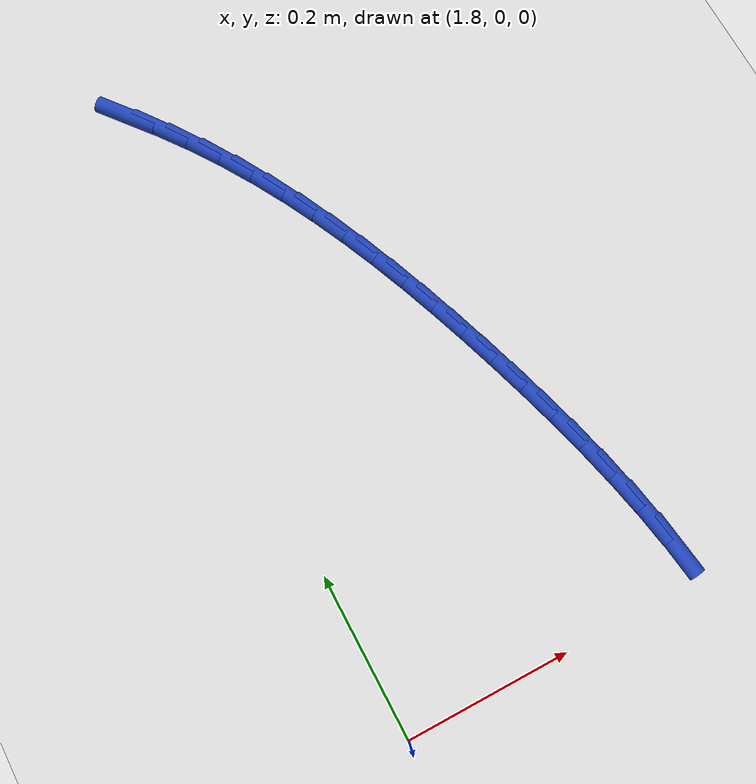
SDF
<sdf version="1.6">
 <world name="default">
  <model name="ground_plane">
   <static>1</static>
   <link name="link">
    <collision name="collision">
     <geometry><plane><normal>0 0 1</normal><size>100 100</size></plane></geometry>
     <surface><friction><ode><mu>100</mu><mu2>50</mu2></ode></friction></surface>
    </collision>
    <visual name="visual">
     <cast_shadows>0</cast_shadows>
     <geometry><plane><normal>0 0 1</normal><size>100 100</size></plane></geometry>
     <material>
      <script><uri>file://media/materials/scripts/gazebo.material</uri><name>Gazebo/WhiteGlow</name></script>
     </material>
    </visual>
   </link>
  </model>
  <model name="line">
   <link name="link_55">
    <pose>1.8437221421092214 0.8193641237856172 0.01 0 1.57 -0.8930328994932771</pose>
    <collision name="collision">
     <geometry><cylinder><radius>0.01</radius><length>0.08</length></cylinder></geometry>
    </collision>
    <visual name="visual">
     <material>
      <script><name>Gazebo/Blue</name><uri>file://media/materials/scripts/gazebo.material</uri></script>
     </material>
     <geometry><cylinder><radius>0.01</radius><length>0.08</length></cylinder></geometry>
    </visual>
   </link>
   <link name="link_56">
    <pose>1.873075689637875 0.78289868104458 0.01 0 1.57 -0.9362868223097333</pose>
    <collision name="collision">
     <geometry><cylinder><radius>0.01</radius><length>0.08</length></cylinder></geometry>
    </collision>
    <visual name="visual">
     <material>
      <script><name>Gazebo/Blue</name><uri>file://media/materials/scripts/gazebo.material</uri></script>
     </material>
     <geometry><cylinder><radius>0.01</radius><length>0.08</length></cylinder></geometry>
    </visual>
   </link>
   <link name="link_57">
    <pose>1.900731906571012 0.7453245637387648 0.01 0 1.57 -0.980155334895303</pose>
    <collision name="collision">
     <geometry><cylinder><radius>0.01</radius><length>0.08</length></cylinder></geometry>
    </collision>
    <visual name="visual">
     <material>
      <script><name>Gazebo/Blue</name><uri>file://media/materials/scripts/gazebo.material</uri></script>
     </material>
     <geometry><cylinder><radius>0.01</radius><length>0.08</length></cylinder></geometry>
    </visual>
   </link>
   <link name="link_58">
    <pose>1.9266118898378368 0.7067256292664923 0.01 0 1.57 -1.0233508540933316</pose>
    <collision name="collision">
     <geometry><cylinder><radius>0.01</radius><length>0.08</length></cylinder></geometry>
    </collision>
    <visual name="visual">
     <material>
      <script><name>Gazebo/Blue</name><uri>file://media/materials/scripts/gazebo.material</uri></script>
     </material>
     <geometry><cylinder><radius>0.01</radius><length>0.08</length></cylinder></geometry>
    </visual>
   </link>
   <link name="link_59">
    <pose>1.9507228171243516 0.6671733193071 0.01 0 1.57 -1.063724761281476</pose>
    <collision name="collision">
     <geometry><cylinder><radius>0.01</radius><length>0.08</length></cylinder></geometry>
    </collision>
    <visual name="visual">
     <material>
      <script><name>Gazebo/Blue</name><uri>file://media/materials/scripts/gazebo.material</uri></script>
     </material>
     <geometry><cylinder><radius>0.01</radius><length>0.08</length></cylinder></geometry>
    </visual>
   </link>
   <link name="link_60">
    <pose>1.9731947026909686 0.6267213584049264 0.01 0 1.57 -1.1009181930275793</pose>
    <collision name="collision">
     <geometry><cylinder><radius>0.01</radius><length>0.08</length></cylinder></geometry>
    </collision>
    <visual name="visual">
     <material>
      <script><name>Gazebo/Blue</name><uri>file://media/materials/scripts/gazebo.material</uri></script>
     </material>
     <geometry><cylinder><radius>0.01</radius><length>0.08</length></cylinder></geometry>
    </visual>
   </link>
   <link name="link_61">
    <pose>1.9941669799121624 0.5854221125535995 0.01 0 1.57 -1.1347905037578787</pose>
    <collision name="collision">
     <geometry><cylinder><radius>0.01</radius><length>0.08</length></cylinder></geometry>
    </collision>
    <visual name="visual">
     <material>
      <script><name>Gazebo/Blue</name><uri>file://media/materials/scripts/gazebo.material</uri></script>
     </material>
     <geometry><cylinder><radius>0.01</radius><length>0.08</length></cylinder></geometry>
    </visual>
   </link>
   <link name="link_62">
    <pose>2.0137790821624075 0.5433279477467475 0.01 0 1.57 -1.165258480955744</pose>
    <collision name="collision">
     <geometry><cylinder><radius>0.01</radius><length>0.08</length></cylinder></geometry>
    </collision>
    <visual name="visual">
     <material>
      <script><name>Gazebo/Blue</name><uri>file://media/materials/scripts/gazebo.material</uri></script>
     </material>
     <geometry><cylinder><radius>0.01</radius><length>0.08</length></cylinder></geometry>
    </visual>
   </link>
   <link name="link_63">
    <pose>2.032170442816179 0.5004912299779996 0.01 0 1.57 -1.1922861336543689</pose>
    <collision name="collision">
     <geometry><cylinder><radius>0.01</radius><length>0.08</length></cylinder></geometry>
    </collision>
    <visual name="visual">
     <material>
      <script><name>Gazebo/Blue</name><uri>file://media/materials/scripts/gazebo.material</uri></script>
     </material>
     <geometry><cylinder><radius>0.01</radius><length>0.08</length></cylinder></geometry>
    </visual>
   </link>
   <link name="link_64">
    <pose>2.049480495247952 0.4569643252409837 0.01 0 1.57 -1.2158742222389296</pose>
    <collision name="collision">
     <geometry><cylinder><radius>0.01</radius><length>0.08</length></cylinder></geometry>
    </collision>
    <visual name="visual">
     <material>
      <script><name>Gazebo/Blue</name><uri>file://media/materials/scripts/gazebo.material</uri></script>
     </material>
     <geometry><cylinder><radius>0.01</radius><length>0.08</length></cylinder></geometry>
    </visual>
   </link>
   <link name="link_65">
    <pose>2.065848672832199 0.412799599529328 0.01 0 1.57 -1.236050401943354</pose>
    <collision name="collision">
     <geometry><cylinder><radius>0.01</radius><length>0.08</length></cylinder></geometry>
    </collision>
    <visual name="visual">
     <material>
      <script><name>Gazebo/Blue</name><uri>file://media/materials/scripts/gazebo.material</uri></script>
     </material>
     <geometry><cylinder><radius>0.01</radius><length>0.08</length></cylinder></geometry>
    </visual>
   </link>
   <link name="link_66">
    <pose>2.0814144089433975 0.3680494188366612 0.01 0 1.57 -1.252883592524103</pose>
    <collision name="collision">
     <geometry><cylinder><radius>0.01</radius><length>0.08</length></cylinder></geometry>
    </collision>
    <visual name="visual">
     <material>
      <script><name>Gazebo/Blue</name><uri>file://media/materials/scripts/gazebo.material</uri></script>
     </material>
     <geometry><cylinder><radius>0.01</radius><length>0.08</length></cylinder></geometry>
    </visual>
   </link>
   <link name="link_67">
    <pose>2.0963159416422736 0.3227662626731727 0.01 0 1.57 -1.2686904485807189</pose>
    <collision name="collision">
     <geometry><cylinder><radius>0.01</radius><length>0.08</length></cylinder></geometry>
    </collision>
    <visual name="visual">
     <material>
      <script><name>Gazebo/Blue</name><uri>file://media/materials/scripts/gazebo.material</uri></script>
     </material>
     <geometry><cylinder><radius>0.01</radius><length>0.08</length></cylinder></geometry>
    </visual>
   </link>
   <link name="link_68">
    <pose>2.1105744985434587 0.2770137227976692 0.01 0 1.57 -1.2876784618126416</pose>
    <collision name="collision">
     <geometry><cylinder><radius>0.01</radius><length>0.08</length></cylinder></geometry>
    </collision>
    <visual name="visual">
     <material>
      <script><name>Gazebo/Blue</name><uri>file://media/materials/scripts/gazebo.material</uri></script>
     </material>
     <geometry><cylinder><radius>0.01</radius><length>0.08</length></cylinder></geometry>
    </visual>
   </link>
   <link name="link_69">
    <pose>2.123997577090241 0.23087568849691065 0.01 0 1.57 -1.3104150665724807</pose>
    <collision name="collision">
     <geometry><cylinder><radius>0.01</radius><length>0.08</length></cylinder></geometry>
    </collision>
    <visual name="visual">
     <material>
      <script><name>Gazebo/Blue</name><uri>file://media/materials/scripts/gazebo.material</uri></script>
     </material>
     <geometry><cylinder><radius>0.01</radius><length>0.08</length></cylinder></geometry>
    </visual>
   </link>
   <link name="link_70">
    <pose>2.136369905959389 0.18443821136198688 0.01 0 1.57 -1.3370742787127068</pose>
    <collision name="collision">
     <geometry><cylinder><radius>0.01</radius><length>0.08</length></cylinder></geometry>
    </collision>
    <visual name="visual">
     <material>
      <script><name>Gazebo/Blue</name><uri>file://media/materials/scripts/gazebo.material</uri></script>
     </material>
     <geometry><cylinder><radius>0.01</radius><length>0.08</length></cylinder></geometry>
    </visual>
   </link>
   <link name="link_71">
    <pose>2.1474762138276717 0.1377873429839879 0.01 0 1.57 -1.3678698956714423</pose>
    <collision name="collision">
     <geometry><cylinder><radius>0.01</radius><length>0.08</length></cylinder></geometry>
    </collision>
    <visual name="visual">
     <material>
      <script><name>Gazebo/Blue</name><uri>file://media/materials/scripts/gazebo.material</uri></script>
     </material>
     <geometry><cylinder><radius>0.01</radius><length>0.08</length></cylinder></geometry>
    </visual>
   </link>
   <link name="link_72">
    <pose>2.157101229371857 0.0910091349540044 0.01 0 1.57 -1.4030469033667108</pose>
    <collision name="collision">
     <geometry><cylinder><radius>0.01</radius><length>0.08</length></cylinder></geometry>
    </collision>
    <visual name="visual">
     <material>
      <script><name>Gazebo/Blue</name><uri>file://media/materials/scripts/gazebo.material</uri></script>
     </material>
     <geometry><cylinder><radius>0.01</radius><length>0.08</length></cylinder></geometry>
    </visual>
   </link>
   <link name="link_73">
    <pose>2.1650296812687144 0.0441896388631262 0.01 0 1.57 -1.4428691456185951</pose>
    <collision name="collision">
     <geometry><cylinder><radius>0.01</radius><length>0.08</length></cylinder></geometry>
    </collision>
    <visual name="visual">
     <material>
      <script><name>Gazebo/Blue</name><uri>file://media/materials/scripts/gazebo.material</uri></script>
     </material>
     <geometry><cylinder><radius>0.01</radius><length>0.08</length></cylinder></geometry>
    </visual>
   </link>
  </model>
 </world>
</sdf>
